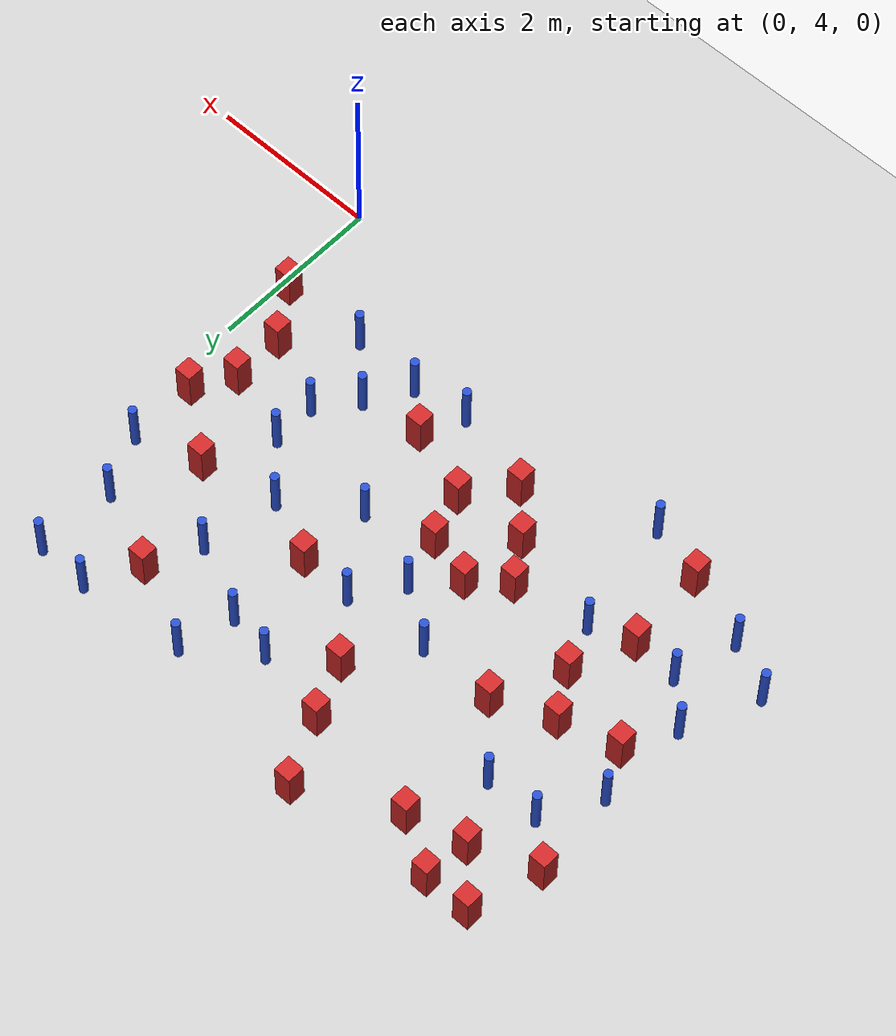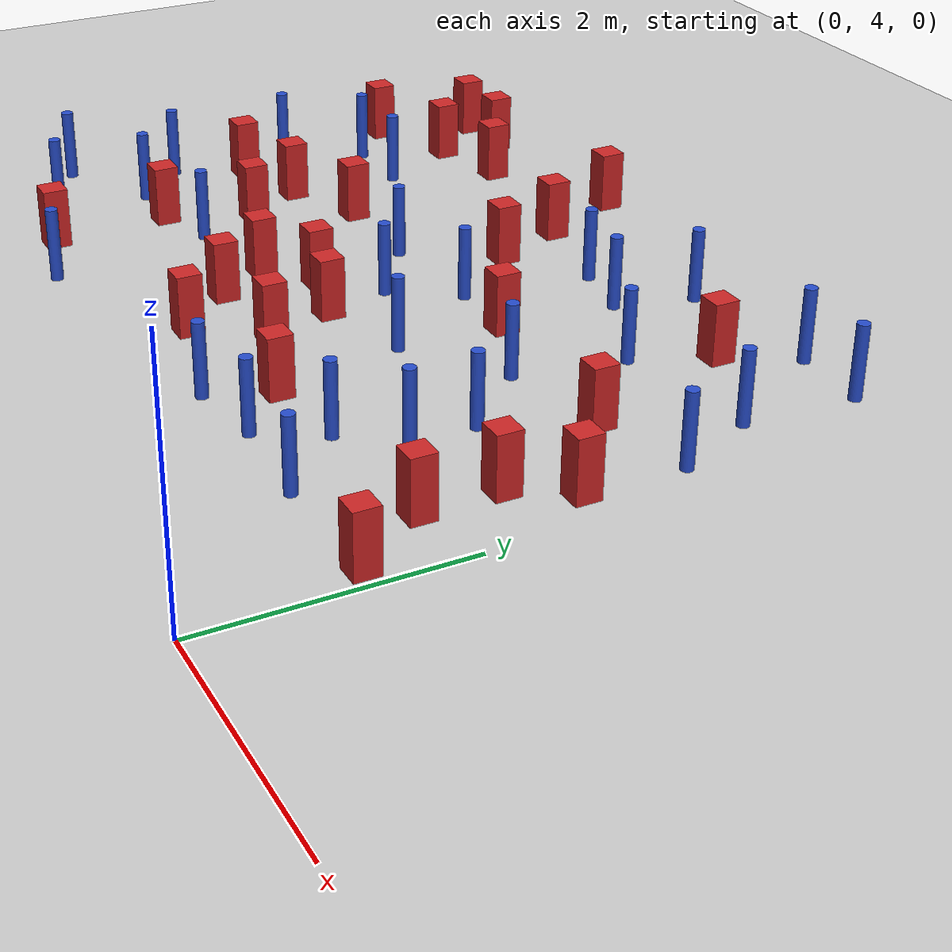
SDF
<sdf version="1.6">
 <world name="default">
  <model name="ground_plane">
   <static>1</static>
   <link name="link">
    <collision name="collision">
     <geometry><plane><normal>0 0 1</normal><size>100 100</size></plane></geometry>
     <surface><friction><ode><mu>100</mu><mu2>50</mu2></ode></friction></surface>
    </collision>
    <visual name="visual">
     <cast_shadows>0</cast_shadows>
     <geometry><plane><normal>0 0 1</normal><size>100 100</size></plane></geometry>
     <material>
      <ambient>1.0 1.0 1.0 1.0</ambient>
      <diffuse>0.8 0.8 0.8 1.0</diffuse>
      <specular>0.01 0.01 0.01 1.000000</specular>
     </material>
    </visual>
   </link>
  </model>
  <model name="square_post_obstacle1">
   <static>true</static>
   <pose>-5.93586615701 9.30533542181 1.91545236811e-07 -7.35059704564e-06 1.12565212e-07 2.39332434364e-05</pose>
   <link name="link">
    <pose>0 0 0.25 0 -0 0</pose>
    <inertial>
     <mass>100</mass>
     <inertia>
      <ixx>0.166667</ixx>
      <ixy>0</ixy>
      <ixz>0</ixz>
      <iyy>0.166667</iyy>
      <iyz>0</iyz>
      <izz>0.166667</izz>
     </inertia>
    </inertial>
    <collision name="collision"><geometry><box><size>.2 .2 .5</size></box></geometry></collision>
    <visual name="visual">
     <geometry><box><size>.2 .2 .5</size></box></geometry>
     <material>
      <script><name>Gazebo/Red</name><uri>file://media/materials/scripts/gazebo.material</uri></script>
     </material>
    </visual>
   </link>
  </model>
  <model name="square_post_obstacle4">
   <static>true</static>
   <pose>-4.29412460987 9.49368886401 1.91545236811e-07 -7.35059704564e-06 1.12565212e-07 2.39332434364e-05</pose>
   <link name="link">
    <pose>0 0 0.25 0 -0 0</pose>
    <inertial>
     <mass>100</mass>
     <inertia>
      <ixx>0.166667</ixx>
      <ixy>0</ixy>
      <ixz>0</ixz>
      <iyy>0.166667</iyy>
      <iyz>0</iyz>
      <izz>0.166667</izz>
     </inertia>
    </inertial>
    <collision name="collision"><geometry><box><size>.2 .2 .5</size></box></geometry></collision>
    <visual name="visual">
     <geometry><box><size>.2 .2 .5</size></box></geometry>
     <material>
      <script><name>Gazebo/Red</name><uri>file://media/materials/scripts/gazebo.material</uri></script>
     </material>
    </visual>
   </link>
  </model>
  <model name="pole_obstacle4">
   <static>true</static>
   <pose>-6.60914330545 7.4561722727 7.38925637345e-09 -8.47170692796e-08 1.24976764786e-08 -1.74513093032e-07</pose>
   <link name="link">
    <pose>0 0 0.3 0 -0 0</pose>
    <inertial>
     <mass>1</mass>
     <inertia><ixx>0.145833</ixx><ixy>0</ixy><ixz>0</ixz><iyy>0.145833</iyy><iyz>0</iyz><izz>0.125</izz></inertia>
    </inertial>
    <collision name="collision">
     <geometry><cylinder><radius>0.05</radius><length>.6</length></cylinder></geometry>
    </collision>
    <visual name="visual">
     <geometry><cylinder><radius>0.05</radius><length>.6</length></cylinder></geometry>
     <material>
      <script><name>Gazebo/Blue</name><uri>file://media/materials/scripts/gazebo.material</uri></script>
     </material>
    </visual>
   </link>
  </model>
  <model name="pole_obstacle5">
   <static>true</static>
   <pose>-2.38773180387 9.13215212733 7.38925637345e-09 -8.47170692793e-08 1.24976764408e-08 -1.74513093041e-07</pose>
   <link name="link">
    <pose>0 0 0.3 0 -0 0</pose>
    <inertial>
     <mass>1</mass>
     <inertia><ixx>0.145833</ixx><ixy>0</ixy><ixz>0</ixz><iyy>0.145833</iyy><iyz>0</iyz><izz>0.125</izz></inertia>
    </inertial>
    <collision name="collision">
     <geometry><cylinder><radius>0.05</radius><length>.6</length></cylinder></geometry>
    </collision>
    <visual name="visual">
     <geometry><cylinder><radius>0.05</radius><length>.6</length></cylinder></geometry>
     <material>
      <script><name>Gazebo/Blue</name><uri>file://media/materials/scripts/gazebo.material</uri></script>
     </material>
    </visual>
   </link>
  </model>
  <model name="square_post_obstacle7">
   <static>true</static>
   <pose>-3.95913503365 8.76705724128 1.91545236811e-07 -7.35059704564e-06 1.12565212e-07 2.39332434364e-05</pose>
   <link name="link">
    <pose>0 0 0.25 0 -0 0</pose>
    <inertial>
     <mass>100</mass>
     <inertia>
      <ixx>0.166667</ixx>
      <ixy>0</ixy>
      <ixz>0</ixz>
      <iyy>0.166667</iyy>
      <iyz>0</iyz>
      <izz>0.166667</izz>
     </inertia>
    </inertial>
    <collision name="collision"><geometry><box><size>.2 .2 .5</size></box></geometry></collision>
    <visual name="visual">
     <geometry><box><size>.2 .2 .5</size></box></geometry>
     <material>
      <script><name>Gazebo/Red</name><uri>file://media/materials/scripts/gazebo.material</uri></script>
     </material>
    </visual>
   </link>
  </model>
  <model name="square_post_obstacle11">
   <static>true</static>
   <pose>-0.548768333741 5.81287290309 1.91545236811e-07 -7.35059704564e-06 1.12565212e-07 2.39332434364e-05</pose>
   <link name="link">
    <pose>0 0 0.25 0 -0 0</pose>
    <inertial>
     <mass>100</mass>
     <inertia>
      <ixx>0.166667</ixx>
      <ixy>0</ixy>
      <ixz>0</ixz>
      <iyy>0.166667</iyy>
      <iyz>0</iyz>
      <izz>0.166667</izz>
     </inertia>
    </inertial>
    <collision name="collision"><geometry><box><size>.2 .2 .5</size></box></geometry></collision>
    <visual name="visual">
     <geometry><box><size>.2 .2 .5</size></box></geometry>
     <material>
      <script><name>Gazebo/Red</name><uri>file://media/materials/scripts/gazebo.material</uri></script>
     </material>
    </visual>
   </link>
  </model>
  <model name="pole_obstacle12">
   <static>true</static>
   <pose>-6.63953947709 6.40837242302 7.38925637345e-09 -8.47170692796e-08 1.24976764786e-08 -1.74513093032e-07</pose>
   <link name="link">
    <pose>0 0 0.3 0 -0 0</pose>
    <inertial>
     <mass>1</mass>
     <inertia><ixx>0.145833</ixx><ixy>0</ixy><ixz>0</ixz><iyy>0.145833</iyy><iyz>0</iyz><izz>0.125</izz></inertia>
    </inertial>
    <collision name="collision">
     <geometry><cylinder><radius>0.05</radius><length>.6</length></cylinder></geometry>
    </collision>
    <visual name="visual">
     <geometry><cylinder><radius>0.05</radius><length>.6</length></cylinder></geometry>
     <material>
      <script><name>Gazebo/Blue</name><uri>file://media/materials/scripts/gazebo.material</uri></script>
     </material>
    </visual>
   </link>
  </model>
  <model name="pole_obstacle19">
   <static>true</static>
   <pose>-1.70139228714 5.74017585205 7.38925637345e-09 -8.47170692799e-08 1.24976765033e-08 -1.74513093018e-07</pose>
   <link name="link">
    <pose>0 0 0.3 0 -0 0</pose>
    <inertial>
     <mass>1</mass>
     <inertia><ixx>0.145833</ixx><ixy>0</ixy><ixz>0</ixz><iyy>0.145833</iyy><iyz>0</iyz><izz>0.125</izz></inertia>
    </inertial>
    <collision name="collision">
     <geometry><cylinder><radius>0.05</radius><length>.6</length></cylinder></geometry>
    </collision>
    <visual name="visual">
     <geometry><cylinder><radius>0.05</radius><length>.6</length></cylinder></geometry>
     <material>
      <script><name>Gazebo/Blue</name><uri>file://media/materials/scripts/gazebo.material</uri></script>
     </material>
    </visual>
   </link>
  </model>
  <model name="pole_obstacle27">
   <static>true</static>
   <pose>-4.17387550095 7.45153326358 7.38925637345e-09 -8.47170692796e-08 1.24976764786e-08 -1.74513093032e-07</pose>
   <link name="link">
    <pose>0 0 0.3 0 -0 0</pose>
    <inertial>
     <mass>1</mass>
     <inertia><ixx>0.145833</ixx><ixy>0</ixy><ixz>0</ixz><iyy>0.145833</iyy><iyz>0</iyz><izz>0.125</izz></inertia>
    </inertial>
    <collision name="collision">
     <geometry><cylinder><radius>0.05</radius><length>.6</length></cylinder></geometry>
    </collision>
    <visual name="visual">
     <geometry><cylinder><radius>0.05</radius><length>.6</length></cylinder></geometry>
     <material>
      <script><name>Gazebo/Blue</name><uri>file://media/materials/scripts/gazebo.material</uri></script>
     </material>
    </visual>
   </link>
  </model>
  <model name="square_post_obstacle33">
   <static>true</static>
   <pose>-3.7094622138 8.16504789016 1.91545236811e-07 -7.35059704564e-06 1.12565212e-07 2.39332434364e-05</pose>
   <link name="link">
    <pose>0 0 0.25 0 -0 0</pose>
    <inertial>
     <mass>100</mass>
     <inertia>
      <ixx>0.166667</ixx>
      <ixy>0</ixy>
      <ixz>0</ixz>
      <iyy>0.166667</iyy>
      <iyz>0</iyz>
      <izz>0.166667</izz>
     </inertia>
    </inertial>
    <collision name="collision"><geometry><box><size>.2 .2 .5</size></box></geometry></collision>
    <visual name="visual">
     <geometry><box><size>.2 .2 .5</size></box></geometry>
     <material>
      <script><name>Gazebo/Red</name><uri>file://media/materials/scripts/gazebo.material</uri></script>
     </material>
    </visual>
   </link>
  </model>
  <model name="square_post_obstacle39">
   <static>true</static>
   <pose>-3.41414844819 6.47885271803 1.91545236811e-07 -7.35059704564e-06 1.12565212e-07 2.39332434364e-05</pose>
   <link name="link">
    <pose>0 0 0.25 0 -0 0</pose>
    <inertial>
     <mass>100</mass>
     <inertia>
      <ixx>0.166667</ixx>
      <ixy>0</ixy>
      <ixz>0</ixz>
      <iyy>0.166667</iyy>
      <iyz>0</iyz>
      <izz>0.166667</izz>
     </inertia>
    </inertial>
    <collision name="collision"><geometry><box><size>.2 .2 .5</size></box></geometry></collision>
    <visual name="visual">
     <geometry><box><size>.2 .2 .5</size></box></geometry>
     <material>
      <script><name>Gazebo/Red</name><uri>file://media/materials/scripts/gazebo.material</uri></script>
     </material>
    </visual>
   </link>
  </model>
  <model name="pole_obstacle43">
   <static>true</static>
   <pose>-1.37475501201 6.67901718894 7.38925637345e-09 -8.47170692799e-08 1.24976765033e-08 -1.74513093018e-07</pose>
   <link name="link">
    <pose>0 0 0.3 0 -0 0</pose>
    <inertial>
     <mass>1</mass>
     <inertia><ixx>0.145833</ixx><ixy>0</ixy><ixz>0</ixz><iyy>0.145833</iyy><iyz>0</iyz><izz>0.125</izz></inertia>
    </inertial>
    <collision name="collision">
     <geometry><cylinder><radius>0.05</radius><length>.6</length></cylinder></geometry>
    </collision>
    <visual name="visual">
     <geometry><cylinder><radius>0.05</radius><length>.6</length></cylinder></geometry>
     <material>
      <script><name>Gazebo/Blue</name><uri>file://media/materials/scripts/gazebo.material</uri></script>
     </material>
    </visual>
   </link>
  </model>
  <model name="square_post_obstacle44">
   <static>true</static>
   <pose>-3.9561418667 6.6270050937 1.91545236811e-07 -7.35059704564e-06 1.12565212e-07 2.39332434364e-05</pose>
   <link name="link">
    <pose>0 0 0.25 0 -0 0</pose>
    <inertial>
     <mass>100</mass>
     <inertia>
      <ixx>0.166667</ixx>
      <ixy>0</ixy>
      <ixz>0</ixz>
      <iyy>0.166667</iyy>
      <iyz>0</iyz>
      <izz>0.166667</izz>
     </inertia>
    </inertial>
    <collision name="collision"><geometry><box><size>.2 .2 .5</size></box></geometry></collision>
    <visual name="visual">
     <geometry><box><size>.2 .2 .5</size></box></geometry>
     <material>
      <script><name>Gazebo/Red</name><uri>file://media/materials/scripts/gazebo.material</uri></script>
     </material>
    </visual>
   </link>
  </model>
  <model name="square_post_obstacle46">
   <static>true</static>
   <pose>-1.48696162548 8.71380856755 1.91545236811e-07 -7.35059704564e-06 1.12565212e-07 2.39332434364e-05</pose>
   <link name="link">
    <pose>0 0 0.25 0 -0 0</pose>
    <inertial>
     <mass>100</mass>
     <inertia>
      <ixx>0.166667</ixx>
      <ixy>0</ixy>
      <ixz>0</ixz>
      <iyy>0.166667</iyy>
      <iyz>0</iyz>
      <izz>0.166667</izz>
     </inertia>
    </inertial>
    <collision name="collision"><geometry><box><size>.2 .2 .5</size></box></geometry></collision>
    <visual name="visual">
     <geometry><box><size>.2 .2 .5</size></box></geometry>
     <material>
      <script><name>Gazebo/Red</name><uri>file://media/materials/scripts/gazebo.material</uri></script>
     </material>
    </visual>
   </link>
  </model>
  <model name="square_post_obstacle49">
   <static>true</static>
   <pose>-1.04028809489 7.4325703689 1.91545236811e-07 -7.35059704564e-06 1.12565212e-07 2.39332434364e-05</pose>
   <link name="link">
    <pose>0 0 0.25 0 -0 0</pose>
    <inertial>
     <mass>100</mass>
     <inertia>
      <ixx>0.166667</ixx>
      <ixy>0</ixy>
      <ixz>0</ixz>
      <iyy>0.166667</iyy>
      <iyz>0</iyz>
      <izz>0.166667</izz>
     </inertia>
    </inertial>
    <collision name="collision"><geometry><box><size>.2 .2 .5</size></box></geometry></collision>
    <visual name="visual">
     <geometry><box><size>.2 .2 .5</size></box></geometry>
     <material>
      <script><name>Gazebo/Red</name><uri>file://media/materials/scripts/gazebo.material</uri></script>
     </material>
    </visual>
   </link>
  </model>
  <model name="square_post_obstacle61">
   <static>true</static>
   <pose>-6.70697640403 8.48595060071 1.91545236811e-07 -7.35059704564e-06 1.12565212e-07 2.39332434364e-05</pose>
   <link name="link">
    <pose>0 0 0.25 0 -0 0</pose>
    <inertial>
     <mass>100</mass>
     <inertia>
      <ixx>0.166667</ixx>
      <ixy>0</ixy>
      <ixz>0</ixz>
      <iyy>0.166667</iyy>
      <iyz>0</iyz>
      <izz>0.166667</izz>
     </inertia>
    </inertial>
    <collision name="collision"><geometry><box><size>.2 .2 .5</size></box></geometry></collision>
    <visual name="visual">
     <geometry><box><size>.2 .2 .5</size></box></geometry>
     <material>
      <script><name>Gazebo/Red</name><uri>file://media/materials/scripts/gazebo.material</uri></script>
     </material>
    </visual>
   </link>
  </model>
  <model name="square_post_obstacle63">
   <static>true</static>
   <pose>-5.33580220852 8.95085394296 1.91545236811e-07 -7.35059704564e-06 1.12565212e-07 2.39332434364e-05</pose>
   <link name="link">
    <pose>0 0 0.25 0 -0 0</pose>
    <inertial>
     <mass>100</mass>
     <inertia>
      <ixx>0.166667</ixx>
      <ixy>0</ixy>
      <ixz>0</ixz>
      <iyy>0.166667</iyy>
      <iyz>0</iyz>
      <izz>0.166667</izz>
     </inertia>
    </inertial>
    <collision name="collision"><geometry><box><size>.2 .2 .5</size></box></geometry></collision>
    <visual name="visual">
     <geometry><box><size>.2 .2 .5</size></box></geometry>
     <material>
      <script><name>Gazebo/Red</name><uri>file://media/materials/scripts/gazebo.material</uri></script>
     </material>
    </visual>
   </link>
  </model>
  <model name="square_post_obstacle67">
   <static>true</static>
   <pose>-5.05471990113 7.45073035327 1.91545236811e-07 -7.35059704564e-06 1.12565212e-07 2.39332434364e-05</pose>
   <link name="link">
    <pose>0 0 0.25 0 -0 0</pose>
    <inertial>
     <mass>100</mass>
     <inertia>
      <ixx>0.166667</ixx>
      <ixy>0</ixy>
      <ixz>0</ixz>
      <iyy>0.166667</iyy>
      <iyz>0</iyz>
      <izz>0.166667</izz>
     </inertia>
    </inertial>
    <collision name="collision"><geometry><box><size>.2 .2 .5</size></box></geometry></collision>
    <visual name="visual">
     <geometry><box><size>.2 .2 .5</size></box></geometry>
     <material>
      <script><name>Gazebo/Red</name><uri>file://media/materials/scripts/gazebo.material</uri></script>
     </material>
    </visual>
   </link>
  </model>
  <model name="pole_obstacle72">
   <static>true</static>
   <pose>-0.550769498882 9.24654588252 7.38925637345e-09 -8.47170692797e-08 1.249767648e-08 -1.74513093032e-07</pose>
   <link name="link">
    <pose>0 0 0.3 0 -0 0</pose>
    <inertial>
     <mass>1</mass>
     <inertia><ixx>0.145833</ixx><ixy>0</ixy><ixz>0</ixz><iyy>0.145833</iyy><iyz>0</iyz><izz>0.125</izz></inertia>
    </inertial>
    <collision name="collision">
     <geometry><cylinder><radius>0.05</radius><length>.6</length></cylinder></geometry>
    </collision>
    <visual name="visual">
     <geometry><cylinder><radius>0.05</radius><length>.6</length></cylinder></geometry>
     <material>
      <script><name>Gazebo/Blue</name><uri>file://media/materials/scripts/gazebo.material</uri></script>
     </material>
    </visual>
   </link>
  </model>
  <model name="square_post_obstacle78">
   <static>true</static>
   <pose>-6.45839083778 9.28827271818 1.91545236811e-07 -7.35059704564e-06 1.12565212e-07 2.39332434364e-05</pose>
   <link name="link">
    <pose>0 0 0.25 0 -0 0</pose>
    <inertial>
     <mass>100</mass>
     <inertia>
      <ixx>0.166667</ixx>
      <ixy>0</ixy>
      <ixz>0</ixz>
      <iyy>0.166667</iyy>
      <iyz>0</iyz>
      <izz>0.166667</izz>
     </inertia>
    </inertial>
    <collision name="collision"><geometry><box><size>.2 .2 .5</size></box></geometry></collision>
    <visual name="visual">
     <geometry><box><size>.2 .2 .5</size></box></geometry>
     <material>
      <script><name>Gazebo/Red</name><uri>file://media/materials/scripts/gazebo.material</uri></script>
     </material>
    </visual>
   </link>
  </model>
  <model name="pole_obstacle84">
   <static>true</static>
   <pose>-1.1549960104 5.20601954785 7.38925637345e-09 -8.47170692799e-08 1.24976765033e-08 -1.74513093018e-07</pose>
   <link name="link">
    <pose>0 0 0.3 0 -0 0</pose>
    <inertial>
     <mass>1</mass>
     <inertia><ixx>0.145833</ixx><ixy>0</ixy><ixz>0</ixz><iyy>0.145833</iyy><iyz>0</iyz><izz>0.125</izz></inertia>
    </inertial>
    <collision name="collision">
     <geometry><cylinder><radius>0.05</radius><length>.6</length></cylinder></geometry>
    </collision>
    <visual name="visual">
     <geometry><cylinder><radius>0.05</radius><length>.6</length></cylinder></geometry>
     <material>
      <script><name>Gazebo/Blue</name><uri>file://media/materials/scripts/gazebo.material</uri></script>
     </material>
    </visual>
   </link>
  </model>
  <model name="pole_obstacle87">
   <static>true</static>
   <pose>-1.74160658097 8.11662471978 7.38925637345e-09 -8.47170692798e-08 1.24976764881e-08 -1.74513093027e-07</pose>
   <link name="link">
    <pose>0 0 0.3 0 -0 0</pose>
    <inertial>
     <mass>1</mass>
     <inertia><ixx>0.145833</ixx><ixy>0</ixy><ixz>0</ixz><iyy>0.145833</iyy><iyz>0</iyz><izz>0.125</izz></inertia>
    </inertial>
    <collision name="collision">
     <geometry><cylinder><radius>0.05</radius><length>.6</length></cylinder></geometry>
    </collision>
    <visual name="visual">
     <geometry><cylinder><radius>0.05</radius><length>.6</length></cylinder></geometry>
     <material>
      <script><name>Gazebo/Blue</name><uri>file://media/materials/scripts/gazebo.material</uri></script>
     </material>
    </visual>
   </link>
  </model>
  <model name="pole_obstacle93">
   <static>true</static>
   <pose>-6.40776001408 5.27017171537 7.38925637345e-09 -8.47170692796e-08 1.24976764786e-08 -1.74513093032e-07</pose>
   <link name="link">
    <pose>0 0 0.3 0 -0 0</pose>
    <inertial>
     <mass>1</mass>
     <inertia><ixx>0.145833</ixx><ixy>0</ixy><ixz>0</ixz><iyy>0.145833</iyy><iyz>0</iyz><izz>0.125</izz></inertia>
    </inertial>
    <collision name="collision">
     <geometry><cylinder><radius>0.05</radius><length>.6</length></cylinder></geometry>
    </collision>
    <visual name="visual">
     <geometry><cylinder><radius>0.05</radius><length>.6</length></cylinder></geometry>
     <material>
      <script><name>Gazebo/Blue</name><uri>file://media/materials/scripts/gazebo.material</uri></script>
     </material>
    </visual>
   </link>
  </model>
  <model name="pole_obstacle97">
   <static>true</static>
   <pose>-0.597025927968 8.32753455726 7.38925637345e-09 -8.47170692797e-08 1.249767648e-08 -1.74513093032e-07</pose>
   <link name="link">
    <pose>0 0 0.3 0 -0 0</pose>
    <inertial>
     <mass>1</mass>
     <inertia><ixx>0.145833</ixx><ixy>0</ixy><ixz>0</ixz><iyy>0.145833</iyy><iyz>0</iyz><izz>0.125</izz></inertia>
    </inertial>
    <collision name="collision">
     <geometry><cylinder><radius>0.05</radius><length>.6</length></cylinder></geometry>
    </collision>
    <visual name="visual">
     <geometry><cylinder><radius>0.05</radius><length>.6</length></cylinder></geometry>
     <material>
      <script><name>Gazebo/Blue</name><uri>file://media/materials/scripts/gazebo.material</uri></script>
     </material>
    </visual>
   </link>
  </model>
  <model name="square_post_obstacle88">
   <static>true</static>
   <pose>-5.69048242072 5.97918535148 1.91545236811e-07 -7.35059704564e-06 1.12565212e-07 2.39332434364e-05</pose>
   <link name="link">
    <pose>0 0 0.25 0 -0 0</pose>
    <inertial>
     <mass>100</mass>
     <inertia>
      <ixx>0.166667</ixx>
      <ixy>0</ixy>
      <ixz>0</ixz>
      <iyy>0.166667</iyy>
      <iyz>0</iyz>
      <izz>0.166667</izz>
     </inertia>
    </inertial>
    <collision name="collision"><geometry><box><size>.2 .2 .5</size></box></geometry></collision>
    <visual name="visual">
     <geometry><box><size>.2 .2 .5</size></box></geometry>
     <material>
      <script><name>Gazebo/Red</name><uri>file://media/materials/scripts/gazebo.material</uri></script>
     </material>
    </visual>
   </link>
  </model>
  <model name="square_post_obstacle89">
   <static>true</static>
   <pose>-3.22332752729 5.93272370386 1.91545236811e-07 -7.35059704564e-06 1.12565212e-07 2.39332434364e-05</pose>
   <link name="link">
    <pose>0 0 0.25 0 -0 0</pose>
    <inertial>
     <mass>100</mass>
     <inertia>
      <ixx>0.166667</ixx>
      <ixy>0</ixy>
      <ixz>0</ixz>
      <iyy>0.166667</iyy>
      <iyz>0</iyz>
      <izz>0.166667</izz>
     </inertia>
    </inertial>
    <collision name="collision"><geometry><box><size>.2 .2 .5</size></box></geometry></collision>
    <visual name="visual">
     <geometry><box><size>.2 .2 .5</size></box></geometry>
     <material>
      <script><name>Gazebo/Red</name><uri>file://media/materials/scripts/gazebo.material</uri></script>
     </material>
    </visual>
   </link>
  </model>
  <model name="pole_obstacle102">
   <static>true</static>
   <pose>-0.28334652067 7.66037053894 7.38925637345e-09 -8.47170692799e-08 1.24976765096e-08 -1.74513093014e-07</pose>
   <link name="link">
    <pose>0 0 0.3 0 -0 0</pose>
    <inertial>
     <mass>1</mass>
     <inertia><ixx>0.145833</ixx><ixy>0</ixy><ixz>0</ixz><iyy>0.145833</iyy><iyz>0</iyz><izz>0.125</izz></inertia>
    </inertial>
    <collision name="collision">
     <geometry><cylinder><radius>0.05</radius><length>.6</length></cylinder></geometry>
    </collision>
    <visual name="visual">
     <geometry><cylinder><radius>0.05</radius><length>.6</length></cylinder></geometry>
     <material>
      <script><name>Gazebo/Blue</name><uri>file://media/materials/scripts/gazebo.material</uri></script>
     </material>
    </visual>
   </link>
  </model>
  <model name="pole_obstacle113">
   <static>true</static>
   <pose>-3.21509460916 7.54956910081 7.38925637345e-09 -8.47170692794e-08 1.24976764468e-08 -1.7451309304e-07</pose>
   <link name="link">
    <pose>0 0 0.3 0 -0 0</pose>
    <inertial>
     <mass>1</mass>
     <inertia><ixx>0.145833</ixx><ixy>0</ixy><ixz>0</ixz><iyy>0.145833</iyy><iyz>0</iyz><izz>0.125</izz></inertia>
    </inertial>
    <collision name="collision">
     <geometry><cylinder><radius>0.05</radius><length>.6</length></cylinder></geometry>
    </collision>
    <visual name="visual">
     <geometry><cylinder><radius>0.05</radius><length>.6</length></cylinder></geometry>
     <material>
      <script><name>Gazebo/Blue</name><uri>file://media/materials/scripts/gazebo.material</uri></script>
     </material>
    </visual>
   </link>
  </model>
  <model name="pole_obstacle118">
   <static>true</static>
   <pose>-1.90470213448 7.23880807161 7.38925637345e-09 -8.47170692799e-08 1.24976765033e-08 -1.74513093018e-07</pose>
   <link name="link">
    <pose>0 0 0.3 0 -0 0</pose>
    <inertial>
     <mass>1</mass>
     <inertia><ixx>0.145833</ixx><ixy>0</ixy><ixz>0</ixz><iyy>0.145833</iyy><iyz>0</iyz><izz>0.125</izz></inertia>
    </inertial>
    <collision name="collision">
     <geometry><cylinder><radius>0.05</radius><length>.6</length></cylinder></geometry>
    </collision>
    <visual name="visual">
     <geometry><cylinder><radius>0.05</radius><length>.6</length></cylinder></geometry>
     <material>
      <script><name>Gazebo/Blue</name><uri>file://media/materials/scripts/gazebo.material</uri></script>
     </material>
    </visual>
   </link>
  </model>
  <model name="square_post_obstacle110">
   <static>true</static>
   <pose>-4.35169075802 6.31377645628 1.91545236811e-07 -7.35059704564e-06 1.12565212e-07 2.39332434364e-05</pose>
   <link name="link">
    <pose>0 0 0.25 0 -0 0</pose>
    <inertial>
     <mass>100</mass>
     <inertia>
      <ixx>0.166667</ixx>
      <ixy>0</ixy>
      <ixz>0</ixz>
      <iyy>0.166667</iyy>
      <iyz>0</iyz>
      <izz>0.166667</izz>
     </inertia>
    </inertial>
    <collision name="collision"><geometry><box><size>.2 .2 .5</size></box></geometry></collision>
    <visual name="visual">
     <geometry><box><size>.2 .2 .5</size></box></geometry>
     <material>
      <script><name>Gazebo/Red</name><uri>file://media/materials/scripts/gazebo.material</uri></script>
     </material>
    </visual>
   </link>
  </model>
  <model name="pole_obstacle126">
   <static>true</static>
   <pose>-6.99739891664 5.56374455774 7.38925637345e-09 -8.47170692796e-08 1.24976764786e-08 -1.74513093032e-07</pose>
   <link name="link">
    <pose>0 0 0.3 0 -0 0</pose>
    <inertial>
     <mass>1</mass>
     <inertia><ixx>0.145833</ixx><ixy>0</ixy><ixz>0</ixz><iyy>0.145833</iyy><iyz>0</iyz><izz>0.125</izz></inertia>
    </inertial>
    <collision name="collision">
     <geometry><cylinder><radius>0.05</radius><length>.6</length></cylinder></geometry>
    </collision>
    <visual name="visual">
     <geometry><cylinder><radius>0.05</radius><length>.6</length></cylinder></geometry>
     <material>
      <script><name>Gazebo/Blue</name><uri>file://media/materials/scripts/gazebo.material</uri></script>
     </material>
    </visual>
   </link>
  </model>
  <model name="pole_obstacle133">
   <static>true</static>
   <pose>-2.6234251524 5.15181831515 7.38925637345e-09 -8.47170692798e-08 1.24976765033e-08 -1.74513093019e-07</pose>
   <link name="link">
    <pose>0 0 0.3 0 -0 0</pose>
    <inertial>
     <mass>1</mass>
     <inertia><ixx>0.145833</ixx><ixy>0</ixy><ixz>0</ixz><iyy>0.145833</iyy><iyz>0</iyz><izz>0.125</izz></inertia>
    </inertial>
    <collision name="collision">
     <geometry><cylinder><radius>0.05</radius><length>.6</length></cylinder></geometry>
    </collision>
    <visual name="visual">
     <geometry><cylinder><radius>0.05</radius><length>.6</length></cylinder></geometry>
     <material>
      <script><name>Gazebo/Blue</name><uri>file://media/materials/scripts/gazebo.material</uri></script>
     </material>
    </visual>
   </link>
  </model>
  <model name="pole_obstacle134">
   <static>true</static>
   <pose>-3.56435546415 7.02995534082 7.38925637345e-09 -8.47170692794e-08 1.24976764468e-08 -1.7451309304e-07</pose>
   <link name="link">
    <pose>0 0 0.3 0 -0 0</pose>
    <inertial>
     <mass>1</mass>
     <inertia><ixx>0.145833</ixx><ixy>0</ixy><ixz>0</ixz><iyy>0.145833</iyy><iyz>0</iyz><izz>0.125</izz></inertia>
    </inertial>
    <collision name="collision">
     <geometry><cylinder><radius>0.05</radius><length>.6</length></cylinder></geometry>
    </collision>
    <visual name="visual">
     <geometry><cylinder><radius>0.05</radius><length>.6</length></cylinder></geometry>
     <material>
      <script><name>Gazebo/Blue</name><uri>file://media/materials/scripts/gazebo.material</uri></script>
     </material>
    </visual>
   </link>
  </model>
  <model name="square_post_obstacle122">
   <static>true</static>
   <pose>-3.62343524221 5.41979822046 1.91545236811e-07 -7.35059704564e-06 1.12565212e-07 2.39332434364e-05</pose>
   <link name="link">
    <pose>0 0 0.25 0 -0 0</pose>
    <inertial>
     <mass>100</mass>
     <inertia>
      <ixx>0.166667</ixx>
      <ixy>0</ixy>
      <ixz>0</ixz>
      <iyy>0.166667</iyy>
      <iyz>0</iyz>
      <izz>0.166667</izz>
     </inertia>
    </inertial>
    <collision name="collision"><geometry><box><size>.2 .2 .5</size></box></geometry></collision>
    <visual name="visual">
     <geometry><box><size>.2 .2 .5</size></box></geometry>
     <material>
      <script><name>Gazebo/Red</name><uri>file://media/materials/scripts/gazebo.material</uri></script>
     </material>
    </visual>
   </link>
  </model>
  <model name="square_post_obstacle125">
   <static>true</static>
   <pose>-0.294159583885 6.8599379135 1.91545236811e-07 -7.35059704564e-06 1.12565212e-07 2.39332434364e-05</pose>
   <link name="link">
    <pose>0 0 0.25 0 -0 0</pose>
    <inertial>
     <mass>100</mass>
     <inertia>
      <ixx>0.166667</ixx>
      <ixy>0</ixy>
      <ixz>0</ixz>
      <iyy>0.166667</iyy>
      <iyz>0</iyz>
      <izz>0.166667</izz>
     </inertia>
    </inertial>
    <collision name="collision"><geometry><box><size>.2 .2 .5</size></box></geometry></collision>
    <visual name="visual">
     <geometry><box><size>.2 .2 .5</size></box></geometry>
     <material>
      <script><name>Gazebo/Red</name><uri>file://media/materials/scripts/gazebo.material</uri></script>
     </material>
    </visual>
   </link>
  </model>
  <model name="square_post_obstacle132">
   <static>true</static>
   <pose>-5.40478853389 6.6760429504 1.91545236811e-07 -7.35059704564e-06 1.12565212e-07 2.39332434364e-05</pose>
   <link name="link">
    <pose>0 0 0.25 0 -0 0</pose>
    <inertial>
     <mass>100</mass>
     <inertia>
      <ixx>0.166667</ixx>
      <ixy>0</ixy>
      <ixz>0</ixz>
      <iyy>0.166667</iyy>
      <iyz>0</iyz>
      <izz>0.166667</izz>
     </inertia>
    </inertial>
    <collision name="collision"><geometry><box><size>.2 .2 .5</size></box></geometry></collision>
    <visual name="visual">
     <geometry><box><size>.2 .2 .5</size></box></geometry>
     <material>
      <script><name>Gazebo/Red</name><uri>file://media/materials/scripts/gazebo.material</uri></script>
     </material>
    </visual>
   </link>
  </model>
  <model name="square_post_obstacle136">
   <static>true</static>
   <pose>-0.154405742509 5.24063334683 1.91545236811e-07 -7.35059704564e-06 1.12565212e-07 2.39332434364e-05</pose>
   <link name="link">
    <pose>0 0 0.25 0 -0 0</pose>
    <inertial>
     <mass>100</mass>
     <inertia>
      <ixx>0.166667</ixx>
      <ixy>0</ixy>
      <ixz>0</ixz>
      <iyy>0.166667</iyy>
      <iyz>0</iyz>
      <izz>0.166667</izz>
     </inertia>
    </inertial>
    <collision name="collision"><geometry><box><size>.2 .2 .5</size></box></geometry></collision>
    <visual name="visual">
     <geometry><box><size>.2 .2 .5</size></box></geometry>
     <material>
      <script><name>Gazebo/Red</name><uri>file://media/materials/scripts/gazebo.material</uri></script>
     </material>
    </visual>
   </link>
  </model>
  <model name="pole_obstacle148">
   <static>true</static>
   <pose>-5.64631837514 8.10547012664 7.38925637345e-09 -8.471706928e-08 1.24976765081e-08 -1.74513093015e-07</pose>
   <link name="link">
    <pose>0 0 0.3 0 -0 0</pose>
    <inertial>
     <mass>1</mass>
     <inertia><ixx>0.145833</ixx><ixy>0</ixy><ixz>0</ixz><iyy>0.145833</iyy><iyz>0</iyz><izz>0.125</izz></inertia>
    </inertial>
    <collision name="collision">
     <geometry><cylinder><radius>0.05</radius><length>.6</length></cylinder></geometry>
    </collision>
    <visual name="visual">
     <geometry><cylinder><radius>0.05</radius><length>.6</length></cylinder></geometry>
     <material>
      <script><name>Gazebo/Blue</name><uri>file://media/materials/scripts/gazebo.material</uri></script>
     </material>
    </visual>
   </link>
  </model>
  <model name="square_post_obstacle138">
   <static>true</static>
   <pose>-2.42022959265 5.64016055549 1.91545236811e-07 -7.35059704564e-06 1.12565212e-07 2.39332434364e-05</pose>
   <link name="link">
    <pose>0 0 0.25 0 -0 0</pose>
    <inertial>
     <mass>100</mass>
     <inertia>
      <ixx>0.166667</ixx>
      <ixy>0</ixy>
      <ixz>0</ixz>
      <iyy>0.166667</iyy>
      <iyz>0</iyz>
      <izz>0.166667</izz>
     </inertia>
    </inertial>
    <collision name="collision"><geometry><box><size>.2 .2 .5</size></box></geometry></collision>
    <visual name="visual">
     <geometry><box><size>.2 .2 .5</size></box></geometry>
     <material>
      <script><name>Gazebo/Red</name><uri>file://media/materials/scripts/gazebo.material</uri></script>
     </material>
    </visual>
   </link>
  </model>
  <model name="square_post_obstacle145">
   <static>true</static>
   <pose>-2.60490251818 7.54429025007 1.91545236811e-07 -7.35059704564e-06 1.12565212e-07 2.39332434364e-05</pose>
   <link name="link">
    <pose>0 0 0.25 0 -0 0</pose>
    <inertial>
     <mass>100</mass>
     <inertia>
      <ixx>0.166667</ixx>
      <ixy>0</ixy>
      <ixz>0</ixz>
      <iyy>0.166667</iyy>
      <iyz>0</iyz>
      <izz>0.166667</izz>
     </inertia>
    </inertial>
    <collision name="collision"><geometry><box><size>.2 .2 .5</size></box></geometry></collision>
    <visual name="visual">
     <geometry><box><size>.2 .2 .5</size></box></geometry>
     <material>
      <script><name>Gazebo/Red</name><uri>file://media/materials/scripts/gazebo.material</uri></script>
     </material>
    </visual>
   </link>
  </model>
  <model name="square_post_obstacle146">
   <static>true</static>
   <pose>-4.05759099707 5.87467665052 1.91545236811e-07 -7.35059704564e-06 1.12565212e-07 2.39332434364e-05</pose>
   <link name="link">
    <pose>0 0 0.25 0 -0 0</pose>
    <inertial>
     <mass>100</mass>
     <inertia>
      <ixx>0.166667</ixx>
      <ixy>0</ixy>
      <ixz>0</ixz>
      <iyy>0.166667</iyy>
      <iyz>0</iyz>
      <izz>0.166667</izz>
     </inertia>
    </inertial>
    <collision name="collision"><geometry><box><size>.2 .2 .5</size></box></geometry></collision>
    <visual name="visual">
     <geometry><box><size>.2 .2 .5</size></box></geometry>
     <material>
      <script><name>Gazebo/Red</name><uri>file://media/materials/scripts/gazebo.material</uri></script>
     </material>
    </visual>
   </link>
  </model>
  <model name="pole_obstacle162">
   <static>true</static>
   <pose>-1.98304474921 5.25074038252 7.38925637345e-09 -8.47170692799e-08 1.2497676507e-08 -1.74513093016e-07</pose>
   <link name="link">
    <pose>0 0 0.3 0 -0 0</pose>
    <inertial>
     <mass>1</mass>
     <inertia><ixx>0.145833</ixx><ixy>0</ixy><ixz>0</ixz><iyy>0.145833</iyy><iyz>0</iyz><izz>0.125</izz></inertia>
    </inertial>
    <collision name="collision">
     <geometry><cylinder><radius>0.05</radius><length>.6</length></cylinder></geometry>
    </collision>
    <visual name="visual">
     <geometry><cylinder><radius>0.05</radius><length>.6</length></cylinder></geometry>
     <material>
      <script><name>Gazebo/Blue</name><uri>file://media/materials/scripts/gazebo.material</uri></script>
     </material>
    </visual>
   </link>
  </model>
  <model name="pole_obstacle163">
   <static>true</static>
   <pose>-2.65763680415 6.70541689766 7.38925637345e-09 -8.47170692798e-08 1.24976765033e-08 -1.74513093019e-07</pose>
   <link name="link">
    <pose>0 0 0.3 0 -0 0</pose>
    <inertial>
     <mass>1</mass>
     <inertia><ixx>0.145833</ixx><ixy>0</ixy><ixz>0</ixz><iyy>0.145833</iyy><iyz>0</iyz><izz>0.125</izz></inertia>
    </inertial>
    <collision name="collision">
     <geometry><cylinder><radius>0.05</radius><length>.6</length></cylinder></geometry>
    </collision>
    <visual name="visual">
     <geometry><cylinder><radius>0.05</radius><length>.6</length></cylinder></geometry>
     <material>
      <script><name>Gazebo/Blue</name><uri>file://media/materials/scripts/gazebo.material</uri></script>
     </material>
    </visual>
   </link>
  </model>
  <model name="square_post_obstacle157">
   <static>true</static>
   <pose>-0.562231975322 6.42640680957 1.91545236811e-07 -7.35059704564e-06 1.12565212e-07 2.39332434364e-05</pose>
   <link name="link">
    <pose>0 0 0.25 0 -0 0</pose>
    <inertial>
     <mass>100</mass>
     <inertia>
      <ixx>0.166667</ixx>
      <ixy>0</ixy>
      <ixz>0</ixz>
      <iyy>0.166667</iyy>
      <iyz>0</iyz>
      <izz>0.166667</izz>
     </inertia>
    </inertial>
    <collision name="collision"><geometry><box><size>.2 .2 .5</size></box></geometry></collision>
    <visual name="visual">
     <geometry><box><size>.2 .2 .5</size></box></geometry>
     <material>
      <script><name>Gazebo/Red</name><uri>file://media/materials/scripts/gazebo.material</uri></script>
     </material>
    </visual>
   </link>
  </model>
  <model name="pole_obstacle172">
   <static>true</static>
   <pose>-2.55179668172 8.49971497133 7.38925637345e-09 -8.47170692793e-08 1.24976764408e-08 -1.74513093041e-07</pose>
   <link name="link">
    <pose>0 0 0.3 0 -0 0</pose>
    <inertial>
     <mass>1</mass>
     <inertia><ixx>0.145833</ixx><ixy>0</ixy><ixz>0</ixz><iyy>0.145833</iyy><iyz>0</iyz><izz>0.125</izz></inertia>
    </inertial>
    <collision name="collision">
     <geometry><cylinder><radius>0.05</radius><length>.6</length></cylinder></geometry>
    </collision>
    <visual name="visual">
     <geometry><cylinder><radius>0.05</radius><length>.6</length></cylinder></geometry>
     <material>
      <script><name>Gazebo/Blue</name><uri>file://media/materials/scripts/gazebo.material</uri></script>
     </material>
    </visual>
   </link>
  </model>
  <model name="square_post_obstacle167">
   <static>true</static>
   <pose>-5.70845238763 7.16717375883 1.91545236811e-07 -7.35059704564e-06 1.12565212e-07 2.39332434364e-05</pose>
   <link name="link">
    <pose>0 0 0.25 0 -0 0</pose>
    <inertial>
     <mass>100</mass>
     <inertia>
      <ixx>0.166667</ixx>
      <ixy>0</ixy>
      <ixz>0</ixz>
      <iyy>0.166667</iyy>
      <iyz>0</iyz>
      <izz>0.166667</izz>
     </inertia>
    </inertial>
    <collision name="collision"><geometry><box><size>.2 .2 .5</size></box></geometry></collision>
    <visual name="visual">
     <geometry><box><size>.2 .2 .5</size></box></geometry>
     <material>
      <script><name>Gazebo/Red</name><uri>file://media/materials/scripts/gazebo.material</uri></script>
     </material>
    </visual>
   </link>
  </model>
  <model name="square_post_obstacle172">
   <static>true</static>
   <pose>-6.37423312881 6.98378555422 1.91545236811e-07 -7.35059704564e-06 1.12565212e-07 2.39332434364e-05</pose>
   <link name="link">
    <pose>0 0 0.25 0 -0 0</pose>
    <inertial>
     <mass>100</mass>
     <inertia>
      <ixx>0.166667</ixx>
      <ixy>0</ixy>
      <ixz>0</ixz>
      <iyy>0.166667</iyy>
      <iyz>0</iyz>
      <izz>0.166667</izz>
     </inertia>
    </inertial>
    <collision name="collision"><geometry><box><size>.2 .2 .5</size></box></geometry></collision>
    <visual name="visual">
     <geometry><box><size>.2 .2 .5</size></box></geometry>
     <material>
      <script><name>Gazebo/Red</name><uri>file://media/materials/scripts/gazebo.material</uri></script>
     </material>
    </visual>
   </link>
  </model>
  <model name="square_post_obstacle180">
   <static>true</static>
   <pose>-5.99483430007 8.79142487265 1.91545236811e-07 -7.35059704564e-06 1.12565212e-07 2.39332434364e-05</pose>
   <link name="link">
    <pose>0 0 0.25 0 -0 0</pose>
    <inertial>
     <mass>100</mass>
     <inertia>
      <ixx>0.166667</ixx>
      <ixy>0</ixy>
      <ixz>0</ixz>
      <iyy>0.166667</iyy>
      <iyz>0</iyz>
      <izz>0.166667</izz>
     </inertia>
    </inertial>
    <collision name="collision"><geometry><box><size>.2 .2 .5</size></box></geometry></collision>
    <visual name="visual">
     <geometry><box><size>.2 .2 .5</size></box></geometry>
     <material>
      <script><name>Gazebo/Red</name><uri>file://media/materials/scripts/gazebo.material</uri></script>
     </material>
    </visual>
   </link>
  </model>
  <model name="square_post_obstacle182">
   <static>true</static>
   <pose>-5.63000382595 5.00712107994 1.91545236811e-07 -7.35059704564e-06 1.12565212e-07 2.39332434364e-05</pose>
   <link name="link">
    <pose>0 0 0.25 0 -0 0</pose>
    <inertial>
     <mass>100</mass>
     <inertia>
      <ixx>0.166667</ixx>
      <ixy>0</ixy>
      <ixz>0</ixz>
      <iyy>0.166667</iyy>
      <iyz>0</iyz>
      <izz>0.166667</izz>
     </inertia>
    </inertial>
    <collision name="collision"><geometry><box><size>.2 .2 .5</size></box></geometry></collision>
    <visual name="visual">
     <geometry><box><size>.2 .2 .5</size></box></geometry>
     <material>
      <script><name>Gazebo/Red</name><uri>file://media/materials/scripts/gazebo.material</uri></script>
     </material>
    </visual>
   </link>
  </model>
  <model name="pole_obstacle188">
   <static>true</static>
   <pose>-6.21397570044 5.99075034703 7.38925637345e-09 -8.47170692796e-08 1.24976764786e-08 -1.74513093032e-07</pose>
   <link name="link">
    <pose>0 0 0.3 0 -0 0</pose>
    <inertial>
     <mass>1</mass>
     <inertia><ixx>0.145833</ixx><ixy>0</ixy><ixz>0</ixz><iyy>0.145833</iyy><iyz>0</iyz><izz>0.125</izz></inertia>
    </inertial>
    <collision name="collision">
     <geometry><cylinder><radius>0.05</radius><length>.6</length></cylinder></geometry>
    </collision>
    <visual name="visual">
     <geometry><cylinder><radius>0.05</radius><length>.6</length></cylinder></geometry>
     <material>
      <script><name>Gazebo/Blue</name><uri>file://media/materials/scripts/gazebo.material</uri></script>
     </material>
    </visual>
   </link>
  </model>
  <model name="pole_obstacle192">
   <static>true</static>
   <pose>-4.96469012948 4.81064371663 7.38925637345e-09 -8.47170692796e-08 1.24976764786e-08 -1.74513093032e-07</pose>
   <link name="link">
    <pose>0 0 0.3 0 -0 0</pose>
    <inertial>
     <mass>1</mass>
     <inertia><ixx>0.145833</ixx><ixy>0</ixy><ixz>0</ixz><iyy>0.145833</iyy><iyz>0</iyz><izz>0.125</izz></inertia>
    </inertial>
    <collision name="collision">
     <geometry><cylinder><radius>0.05</radius><length>.6</length></cylinder></geometry>
    </collision>
    <visual name="visual">
     <geometry><cylinder><radius>0.05</radius><length>.6</length></cylinder></geometry>
     <material>
      <script><name>Gazebo/Blue</name><uri>file://media/materials/scripts/gazebo.material</uri></script>
     </material>
    </visual>
   </link>
  </model>
  <model name="pole_obstacle195">
   <static>true</static>
   <pose>-1.36401289265 6.16094411468 7.38925637345e-09 -8.47170692799e-08 1.24976765033e-08 -1.74513093018e-07</pose>
   <link name="link">
    <pose>0 0 0.3 0 -0 0</pose>
    <inertial>
     <mass>1</mass>
     <inertia><ixx>0.145833</ixx><ixy>0</ixy><ixz>0</ixz><iyy>0.145833</iyy><iyz>0</iyz><izz>0.125</izz></inertia>
    </inertial>
    <collision name="collision">
     <geometry><cylinder><radius>0.05</radius><length>.6</length></cylinder></geometry>
    </collision>
    <visual name="visual">
     <geometry><cylinder><radius>0.05</radius><length>.6</length></cylinder></geometry>
     <material>
      <script><name>Gazebo/Blue</name><uri>file://media/materials/scripts/gazebo.material</uri></script>
     </material>
    </visual>
   </link>
  </model>
  <model name="pole_obstacle204">
   <static>true</static>
   <pose>-1.17064874031 9.26936450162 7.38925637345e-09 -8.47170692798e-08 1.24976764881e-08 -1.74513093027e-07</pose>
   <link name="link">
    <pose>0 0 0.3 0 -0 0</pose>
    <inertial>
     <mass>1</mass>
     <inertia><ixx>0.145833</ixx><ixy>0</ixy><ixz>0</ixz><iyy>0.145833</iyy><iyz>0</iyz><izz>0.125</izz></inertia>
    </inertial>
    <collision name="collision">
     <geometry><cylinder><radius>0.05</radius><length>.6</length></cylinder></geometry>
    </collision>
    <visual name="visual">
     <geometry><cylinder><radius>0.05</radius><length>.6</length></cylinder></geometry>
     <material>
      <script><name>Gazebo/Blue</name><uri>file://media/materials/scripts/gazebo.material</uri></script>
     </material>
    </visual>
   </link>
  </model>
  <model name="pole_obstacle210">
   <static>true</static>
   <pose>-3.08548052021 8.59917722794 7.38925637345e-09 -8.47170692793e-08 1.24976764408e-08 -1.74513093041e-07</pose>
   <link name="link">
    <pose>0 0 0.3 0 -0 0</pose>
    <inertial>
     <mass>1</mass>
     <inertia><ixx>0.145833</ixx><ixy>0</ixy><ixz>0</ixz><iyy>0.145833</iyy><iyz>0</iyz><izz>0.125</izz></inertia>
    </inertial>
    <collision name="collision">
     <geometry><cylinder><radius>0.05</radius><length>.6</length></cylinder></geometry>
    </collision>
    <visual name="visual">
     <geometry><cylinder><radius>0.05</radius><length>.6</length></cylinder></geometry>
     <material>
      <script><name>Gazebo/Blue</name><uri>file://media/materials/scripts/gazebo.material</uri></script>
     </material>
    </visual>
   </link>
  </model>
  <model name="pole_obstacle215">
   <static>true</static>
   <pose>-6.26514999043 8.09551002078 7.38925637345e-09 -8.471706928e-08 1.24976765081e-08 -1.74513093015e-07</pose>
   <link name="link">
    <pose>0 0 0.3 0 -0 0</pose>
    <inertial>
     <mass>1</mass>
     <inertia><ixx>0.145833</ixx><ixy>0</ixy><ixz>0</ixz><iyy>0.145833</iyy><iyz>0</iyz><izz>0.125</izz></inertia>
    </inertial>
    <collision name="collision">
     <geometry><cylinder><radius>0.05</radius><length>.6</length></cylinder></geometry>
    </collision>
    <visual name="visual">
     <geometry><cylinder><radius>0.05</radius><length>.6</length></cylinder></geometry>
     <material>
      <script><name>Gazebo/Blue</name><uri>file://media/materials/scripts/gazebo.material</uri></script>
     </material>
    </visual>
   </link>
  </model>
  <model name="pole_obstacle220">
   <static>true</static>
   <pose>-5.19660999043 6.14259002078 7.38925637345e-09 -8.47170692796e-08 1.24976764786e-08 -1.74513093032e-07</pose>
   <link name="link">
    <pose>0 0 0.3 0 -0 0</pose>
    <inertial>
     <mass>1</mass>
     <inertia><ixx>0.145833</ixx><ixy>0</ixy><ixz>0</ixz><iyy>0.145833</iyy><iyz>0</iyz><izz>0.125</izz></inertia>
    </inertial>
    <collision name="collision">
     <geometry><cylinder><radius>0.05</radius><length>.6</length></cylinder></geometry>
    </collision>
    <visual name="visual">
     <geometry><cylinder><radius>0.05</radius><length>.6</length></cylinder></geometry>
     <material>
      <script><name>Gazebo/Blue</name><uri>file://media/materials/scripts/gazebo.material</uri></script>
     </material>
    </visual>
   </link>
  </model>
 </world>
</sdf>
